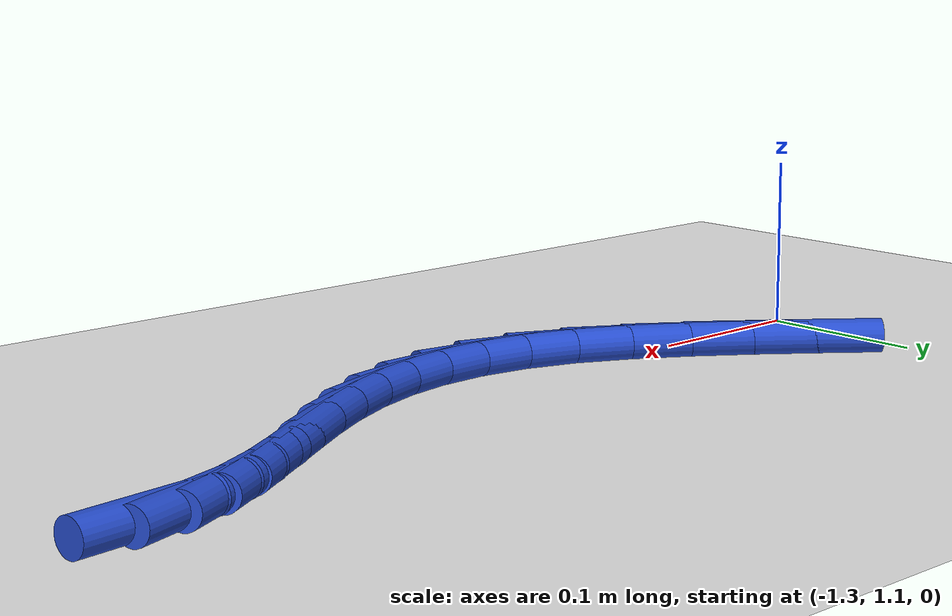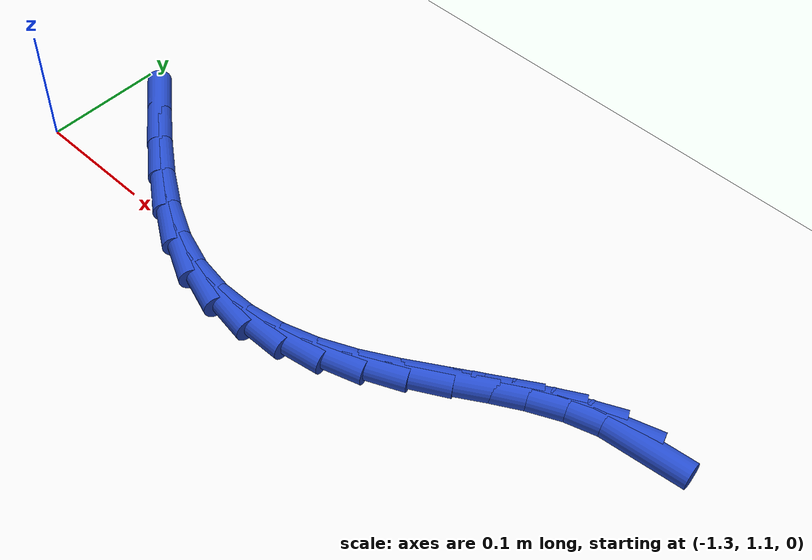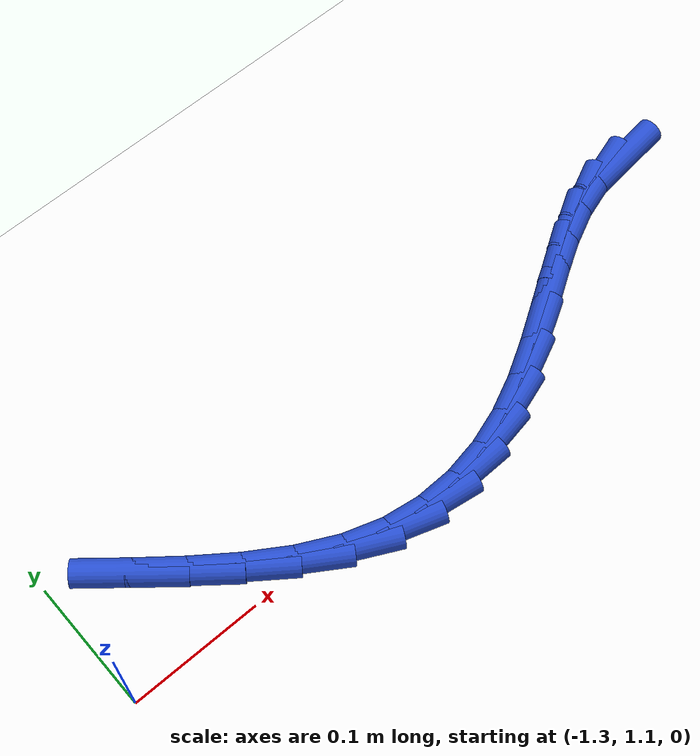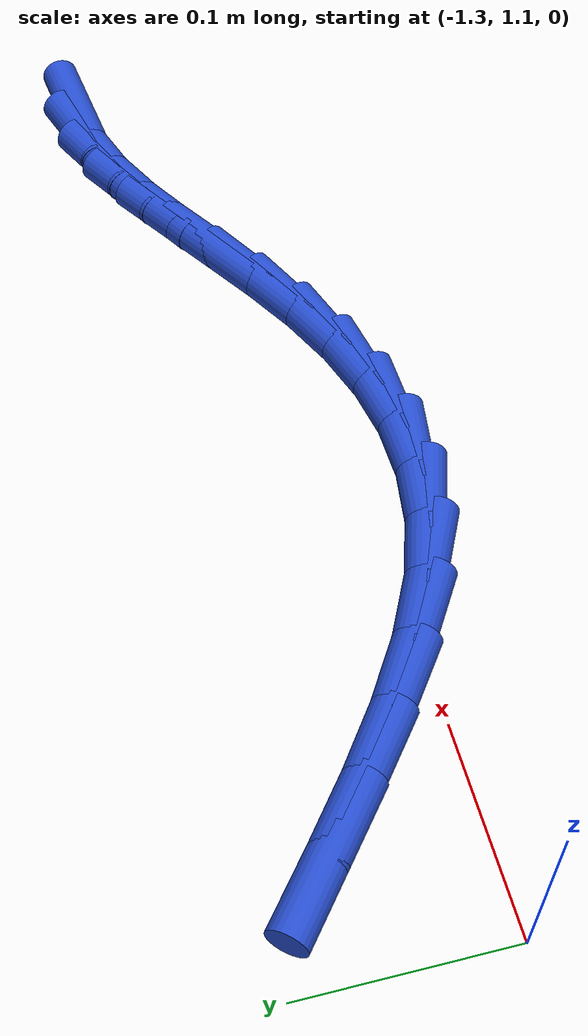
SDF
<sdf version="1.6">
 <world name="default">
  <model name="ground_plane">
   <static>1</static>
   <link name="link">
    <collision name="collision">
     <geometry><plane><normal>0 0 1</normal><size>100 100</size></plane></geometry>
     <surface><friction><ode><mu>100</mu><mu2>50</mu2></ode></friction></surface>
    </collision>
    <visual name="visual">
     <cast_shadows>0</cast_shadows>
     <geometry><plane><normal>0 0 1</normal><size>100 100</size></plane></geometry>
     <material>
      <script><uri>file://media/materials/scripts/gazebo.material</uri><name>Gazebo/WhiteGlow</name></script>
     </material>
    </visual>
   </link>
  </model>
  <model name="line">
   <link name="link_54">
    <pose>-0.7781040499599722 1.1873099066978243 0.01 0 1.57 0.10761917203161885</pose>
    <collision name="collision">
     <geometry><cylinder><radius>0.01</radius><length>0.08</length></cylinder></geometry>
    </collision>
    <visual name="visual">
     <material>
      <script><name>Gazebo/Blue</name><uri>file://media/materials/scripts/gazebo.material</uri></script>
     </material>
     <geometry><cylinder><radius>0.01</radius><length>0.08</length></cylinder></geometry>
    </visual>
   </link>
   <link name="link_55">
    <pose>-0.8035114600831365 1.184564976910733 0.01 0 1.57 0.30572611753320583</pose>
    <collision name="collision">
     <geometry><cylinder><radius>0.01</radius><length>0.08</length></cylinder></geometry>
    </collision>
    <visual name="visual">
     <material>
      <script><name>Gazebo/Blue</name><uri>file://media/materials/scripts/gazebo.material</uri></script>
     </material>
     <geometry><cylinder><radius>0.01</radius><length>0.08</length></cylinder></geometry>
    </visual>
   </link>
   <link name="link_56">
    <pose>-0.8287407608603821 1.1766020672856214 0.01 0 1.57 0.4462342181812535</pose>
    <collision name="collision">
     <geometry><cylinder><radius>0.01</radius><length>0.08</length></cylinder></geometry>
    </collision>
    <visual name="visual">
     <material>
      <script><name>Gazebo/Blue</name><uri>file://media/materials/scripts/gazebo.material</uri></script>
     </material>
     <geometry><cylinder><radius>0.01</radius><length>0.08</length></cylinder></geometry>
    </visual>
   </link>
   <link name="link_57">
    <pose>-0.8539327570992618 1.1645497381536123 0.01 0 1.57 0.5295856027865574</pose>
    <collision name="collision">
     <geometry><cylinder><radius>0.01</radius><length>0.08</length></cylinder></geometry>
    </collision>
    <visual name="visual">
     <material>
      <script><name>Gazebo/Blue</name><uri>file://media/materials/scripts/gazebo.material</uri></script>
     </material>
     <geometry><cylinder><radius>0.01</radius><length>0.08</length></cylinder></geometry>
    </visual>
   </link>
   <link name="link_58">
    <pose>-0.8792412752781241 1.1497351315908677 0.01 0 1.57 0.5659575321430156</pose>
    <collision name="collision">
     <geometry><cylinder><radius>0.01</radius><length>0.08</length></cylinder></geometry>
    </collision>
    <visual name="visual">
     <material>
      <script><name>Gazebo/Blue</name><uri>file://media/materials/scripts/gazebo.material</uri></script>
     </material>
     <geometry><cylinder><radius>0.01</radius><length>0.08</length></cylinder></geometry>
    </visual>
   </link>
   <link name="link_59">
    <pose>-0.9048201418753185 1.1334853896735506 0.01 0 1.57 0.5615207566334015</pose>
    <collision name="collision">
     <geometry><cylinder><radius>0.01</radius><length>0.08</length></cylinder></geometry>
    </collision>
    <visual name="visual">
     <material>
      <script><name>Gazebo/Blue</name><uri>file://media/materials/scripts/gazebo.material</uri></script>
     </material>
     <geometry><cylinder><radius>0.01</radius><length>0.08</length></cylinder></geometry>
    </visual>
   </link>
   <link name="link_60">
    <pose>-0.9308231833691936 1.1171276544778241 0.01 0 1.57 0.5177104476991635</pose>
    <collision name="collision">
     <geometry><cylinder><radius>0.01</radius><length>0.08</length></cylinder></geometry>
    </collision>
    <visual name="visual">
     <material>
      <script><name>Gazebo/Blue</name><uri>file://media/materials/scripts/gazebo.material</uri></script>
     </material>
     <geometry><cylinder><radius>0.01</radius><length>0.08</length></cylinder></geometry>
    </visual>
   </link>
   <link name="link_61">
    <pose>-0.957404226238099 1.101989068079851 0.01 0 1.57 0.4323057126807264</pose>
    <collision name="collision">
     <geometry><cylinder><radius>0.01</radius><length>0.08</length></cylinder></geometry>
    </collision>
    <visual name="visual">
     <material>
      <script><name>Gazebo/Blue</name><uri>file://media/materials/scripts/gazebo.material</uri></script>
     </material>
     <geometry><cylinder><radius>0.01</radius><length>0.08</length></cylinder></geometry>
    </visual>
   </link>
   <link name="link_62">
    <pose>-0.9847143466415075 1.0893877780699792 0.01 0 1.57 0.31312571724454863</pose>
    <collision name="collision">
     <geometry><cylinder><radius>0.01</radius><length>0.08</length></cylinder></geometry>
    </collision>
    <visual name="visual">
     <material>
      <script><name>Gazebo/Blue</name><uri>file://media/materials/scripts/gazebo.material</uri></script>
     </material>
     <geometry><cylinder><radius>0.01</radius><length>0.08</length></cylinder></geometry>
    </visual>
   </link>
   <link name="link_63">
    <pose>-1.012798467338605 1.0802947740194124 0.01 0 1.57 0.17423308863286674</pose>
    <collision name="collision">
     <geometry><cylinder><radius>0.01</radius><length>0.08</length></cylinder></geometry>
    </collision>
    <visual name="visual">
     <material>
      <script><name>Gazebo/Blue</name><uri>file://media/materials/scripts/gazebo.material</uri></script>
     </material>
     <geometry><cylinder><radius>0.01</radius><length>0.08</length></cylinder></geometry>
    </visual>
   </link>
   <link name="link_64">
    <pose>-1.0415640551477052 1.075231517438792 0.01 0 1.57 0.01846573675931245</pose>
    <collision name="collision">
     <geometry><cylinder><radius>0.01</radius><length>0.08</length></cylinder></geometry>
    </collision>
    <visual name="visual">
     <material>
      <script><name>Gazebo/Blue</name><uri>file://media/materials/scripts/gazebo.material</uri></script>
     </material>
     <geometry><cylinder><radius>0.01</radius><length>0.08</length></cylinder></geometry>
    </visual>
   </link>
   <link name="link_65">
    <pose>-1.0709094347101296 1.0746895717851266 0.01 0 1.57 -0.14880482752871935</pose>
    <collision name="collision">
     <geometry><cylinder><radius>0.01</radius><length>0.08</length></cylinder></geometry>
    </collision>
    <visual name="visual">
     <material>
      <script><name>Gazebo/Blue</name><uri>file://media/materials/scripts/gazebo.material</uri></script>
     </material>
     <geometry><cylinder><radius>0.01</radius><length>0.08</length></cylinder></geometry>
    </visual>
   </link>
   <link name="link_66">
    <pose>-1.1007329306671996 1.0791605005154237 0.01 0 1.57 -0.3189151159483015</pose>
    <collision name="collision">
     <geometry><cylinder><radius>0.01</radius><length>0.08</length></cylinder></geometry>
    </collision>
    <visual name="visual">
     <material>
      <script><name>Gazebo/Blue</name><uri>file://media/materials/scripts/gazebo.material</uri></script>
     </material>
     <geometry><cylinder><radius>0.01</radius><length>0.08</length></cylinder></geometry>
    </visual>
   </link>
   <link name="link_67">
    <pose>-1.1309323005242296 1.0891319039916918 0.01 0 1.57 -0.4682939210323814</pose>
    <collision name="collision">
     <geometry><cylinder><radius>0.01</radius><length>0.08</length></cylinder></geometry>
    </collision>
    <visual name="visual">
     <material>
      <script><name>Gazebo/Blue</name><uri>file://media/materials/scripts/gazebo.material</uri></script>
     </material>
     <geometry><cylinder><radius>0.01</radius><length>0.08</length></cylinder></geometry>
    </visual>
   </link>
   <link name="link_68">
    <pose>-1.1613211343509775 1.1045032281665672 0.01 0 1.57 -0.5722279336925387</pose>
    <collision name="collision">
     <geometry><cylinder><radius>0.01</radius><length>0.08</length></cylinder></geometry>
    </collision>
    <visual name="visual">
     <material>
      <script><name>Gazebo/Blue</name><uri>file://media/materials/scripts/gazebo.material</uri></script>
     </material>
     <geometry><cylinder><radius>0.01</radius><length>0.08</length></cylinder></geometry>
    </visual>
   </link>
   <link name="link_69">
    <pose>-1.191540447212336 1.1239679805037117 0.01 0 1.57 -0.6402918925971709</pose>
    <collision name="collision">
     <geometry><cylinder><radius>0.01</radius><length>0.08</length></cylinder></geometry>
    </collision>
    <visual name="visual">
     <material>
      <script><name>Gazebo/Blue</name><uri>file://media/materials/scripts/gazebo.material</uri></script>
     </material>
     <geometry><cylinder><radius>0.01</radius><length>0.08</length></cylinder></geometry>
    </visual>
   </link>
   <link name="link_70">
    <pose>-1.221210092996484 1.1460717960823008 0.01 0 1.57 -0.6810031316759714</pose>
    <collision name="collision">
     <geometry><cylinder><radius>0.01</radius><length>0.08</length></cylinder></geometry>
    </collision>
    <visual name="visual">
     <material>
      <script><name>Gazebo/Blue</name><uri>file://media/materials/scripts/gazebo.material</uri></script>
     </material>
     <geometry><cylinder><radius>0.01</radius><length>0.08</length></cylinder></geometry>
    </visual>
   </link>
   <link name="link_71">
    <pose>-1.2499499255916002 1.1693603099815102 0.01 0 1.57 -0.6981841285572328</pose>
    <collision name="collision">
     <geometry><cylinder><radius>0.01</radius><length>0.08</length></cylinder></geometry>
    </collision>
    <visual name="visual">
     <material>
      <script><name>Gazebo/Blue</name><uri>file://media/materials/scripts/gazebo.material</uri></script>
     </material>
     <geometry><cylinder><radius>0.01</radius><length>0.08</length></cylinder></geometry>
    </visual>
   </link>
  </model>
 </world>
</sdf>
